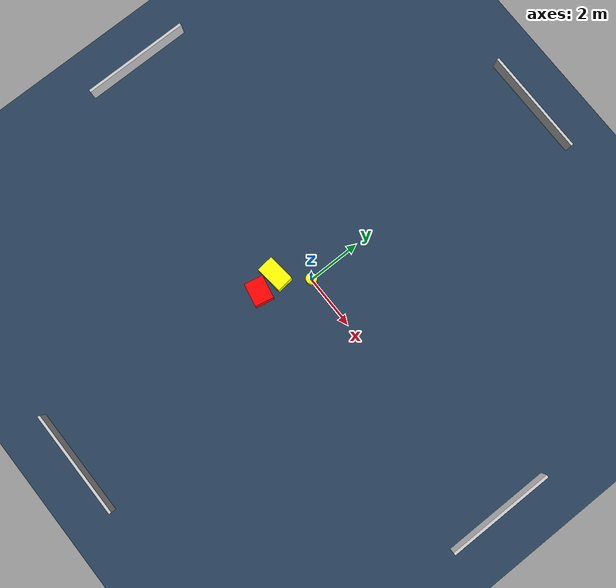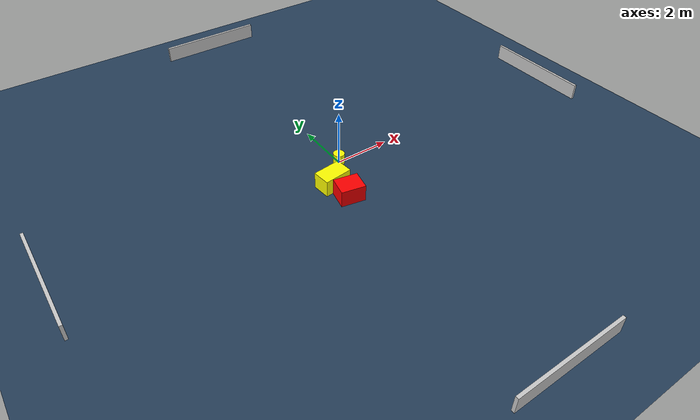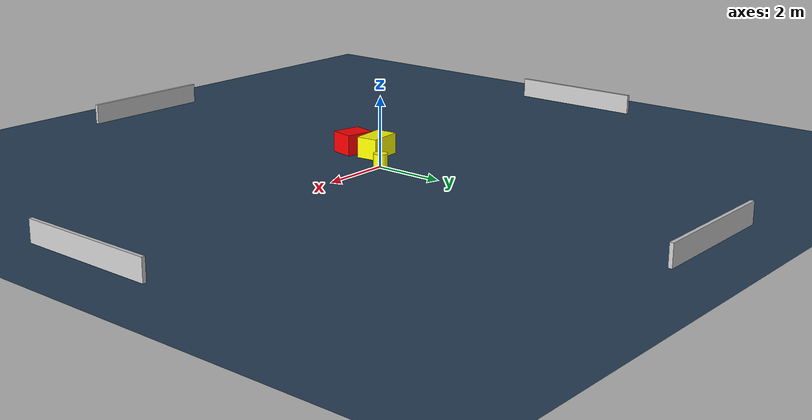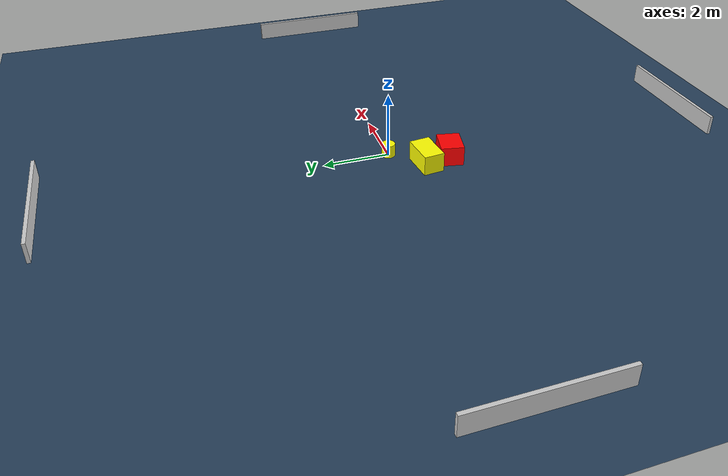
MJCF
<?xml version="1.0" ?>
<mujoco model="generated_environment">
  <option timestep="0.01" integrator="RK4" cone="elliptic"/>
  <default>
    <geom density="1"/>
  </default>
  <asset>
    <texture builtin="gradient" height="3072" name="skybox" rgb1="0.3 0.5 0.7" rgb2="0 0 0" type="skybox" width="512"/>
    <texture builtin="checker" height="300" name="groundplane" rgb1="0.2 0.3 0.4" rgb2="0.1 0.2 0.3" type="2d" width="300"/>
    <material name="groundplane" reflectance="0.2" texrepeat="5 5" texture="groundplane"/>
  </asset>
  <worldbody>
    <light dir="0 0 -1" directional="true" pos="0 0 1.5"/>
    <geom condim="3" friction="0.5 0.005 0.001" material="groundplane" name="floor" pos="0 0 0" size="0 0 0.05" type="plane"/>
    <body name="walls">
      <geom name="wall_1" condim="4" pos="-10.0 0.0 0.3" rgba="0.800000011920929 0.800000011920929 0.800000011920929 1.0" size="0.05 2.0 0.3" type="box"/>
      <geom name="wall_2" condim="4" pos="10.0 0.0 0.3" rgba="0.800000011920929 0.800000011920929 0.800000011920929 1.0" size="0.05 2.0 0.3" type="box"/>
      <geom name="wall_3" condim="4" pos="0.0 -10.0 0.3" rgba="0.800000011920929 0.800000011920929 0.800000011920929 1.0" size="2.0 0.05 0.3" type="box"/>
      <geom name="wall_4" condim="4" pos="0.0 10.0 0.3" rgba="0.800000011920929 0.800000011920929 0.800000011920929 1.0" size="2.0 0.05 0.3" type="box"/>
    </body>
    <body name="robot">
      <joint name="joint_x" type="slide" pos="0 0 0" axis="1 0 0"/>
      <joint name="joint_y" type="slide" pos="0 0 0" axis="0 1 0"/>
      <geom name="robot" type="cylinder" pos="0.0 0.0 0.2" size="0.2 0.2 0.0" mass="5.0" friction="1.0 0.005 0.0001" condim="4" rgba="1.0 1.0 0.0 1.0"/>
    </body>
    <body name="obstacle_1_movable">
      <geom name="obstacle_1_movable" condim="4" pos="-0.8756628747696299 -0.8927640200658075 0.3" euler="0 0 275.9927184393492" friction="0.0 0.005 0.001" rgba="1.0 1.0 0.0 1.0" size="0.3134986769219972 0.5040318318396081 0.3" type="box" mass="0.1"/>
      <joint type="free"/>
    </body>
    <body name="obstacle_2_static">
      <geom name="obstacle_2_static" condim="4" pos="-0.7552327337918672 -1.6793538974887112 0.3" euler="0 0 348.6606271381376" friction="0.0 0.005 0.001" rgba="1.0 0.0 0.0 1.0" size="0.4251119097913421 0.34764894504736654 0.3" type="box"/>
    </body>
  </worldbody>
  <actuator>
    <motor name="actuator_x" joint="joint_x" gear="1" ctrlrange="-1 1"/>
    <motor name="actuator_y" joint="joint_y" gear="1" ctrlrange="-1 1"/>
  </actuator>
</mujoco>
